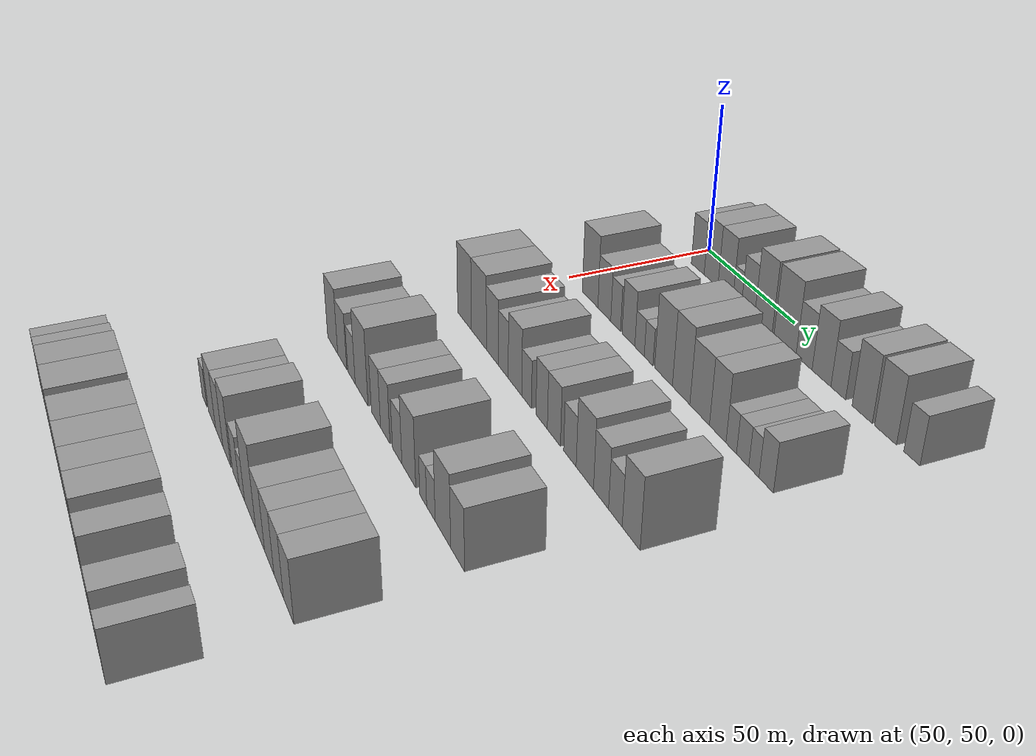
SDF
<sdf version="1.6">
 <world name="default">
  <model name="building_74">
   <static>1</static>
   <pose>50.0000 59.7397 0 0.000000 0.000000 0.000000</pose>
   <link name="link">
    <pose>0 0 9.00 0 0 0</pose>
    <collision name="collision"><geometry><box><size>20.0000 8.1716 18.0000</size></box></geometry></collision>
    <visual name="visual">
     <cast_shadows>0</cast_shadows>
     <geometry><box><size>20.0000 8.1716 18.0000</size></box></geometry>
     <material>
      <script>
       <uri>model://grey_wall/materials/scripts</uri>
       <uri>model://grey_wall/materials/textures</uri>
       <name>vrc/grey_wall</name>
      </script>
     </material>
    </visual>
   </link>
  </model>
  <model name="building_75">
   <static>1</static>
   <pose>50.0000 68.0638 0 0.000000 0.000000 0.000000</pose>
   <link name="link">
    <pose>0 0 10.50 0 0 0</pose>
    <collision name="collision"><geometry><box><size>20.0000 8.4766 21.0000</size></box></geometry></collision>
    <visual name="visual">
     <cast_shadows>0</cast_shadows>
     <geometry><box><size>20.0000 8.4766 21.0000</size></box></geometry>
     <material>
      <script>
       <uri>model://grey_wall/materials/scripts</uri>
       <uri>model://grey_wall/materials/textures</uri>
       <name>vrc/grey_wall</name>
      </script>
     </material>
    </visual>
   </link>
  </model>
  <model name="building_76">
   <static>1</static>
   <pose>50.0000 76.7756 0 0.000000 0.000000 0.000000</pose>
   <link name="link">
    <pose>0 0 10.50 0 0 0</pose>
    <collision name="collision"><geometry><box><size>20.0000 8.9470 21.0000</size></box></geometry></collision>
    <visual name="visual">
     <cast_shadows>0</cast_shadows>
     <geometry><box><size>20.0000 8.9470 21.0000</size></box></geometry>
     <material>
      <script>
       <uri>model://grey_wall/materials/scripts</uri>
       <uri>model://grey_wall/materials/textures</uri>
       <name>vrc/grey_wall</name>
      </script>
     </material>
    </visual>
   </link>
  </model>
  <model name="building_77">
   <static>1</static>
   <pose>50.0000 83.7111 0 0.000000 0.000000 0.000000</pose>
   <link name="link">
    <pose>0 0 6.00 0 0 0</pose>
    <collision name="collision"><geometry><box><size>20.0000 4.9240 12.0000</size></box></geometry></collision>
    <visual name="visual">
     <cast_shadows>0</cast_shadows>
     <geometry><box><size>20.0000 4.9240 12.0000</size></box></geometry>
     <material>
      <script>
       <uri>model://grey_wall/materials/scripts</uri>
       <uri>model://grey_wall/materials/textures</uri>
       <name>vrc/grey_wall</name>
      </script>
     </material>
    </visual>
   </link>
  </model>
  <model name="building_78">
   <static>1</static>
   <pose>50.0000 89.8989 0 0.000000 0.000000 0.000000</pose>
   <link name="link">
    <pose>0 0 9.00 0 0 0</pose>
    <collision name="collision"><geometry><box><size>20.0000 7.4517 18.0000</size></box></geometry></collision>
    <visual name="visual">
     <cast_shadows>0</cast_shadows>
     <geometry><box><size>20.0000 7.4517 18.0000</size></box></geometry>
     <material>
      <script>
       <uri>model://grey_wall/materials/scripts</uri>
       <uri>model://grey_wall/materials/textures</uri>
       <name>vrc/grey_wall</name>
      </script>
     </material>
    </visual>
   </link>
  </model>
  <model name="building_79">
   <static>1</static>
   <pose>50.0000 98.4519 0 0.000000 0.000000 0.000000</pose>
   <link name="link">
    <pose>0 0 12.00 0 0 0</pose>
    <collision name="collision"><geometry><box><size>20.0000 9.6544 24.0000</size></box></geometry></collision>
    <visual name="visual">
     <cast_shadows>0</cast_shadows>
     <geometry><box><size>20.0000 9.6544 24.0000</size></box></geometry>
     <material>
      <script>
       <uri>model://grey_wall/materials/scripts</uri>
       <uri>model://grey_wall/materials/textures</uri>
       <name>vrc/grey_wall</name>
      </script>
     </material>
    </visual>
   </link>
  </model>
  <model name="building_80">
   <static>1</static>
   <pose>50.0000 110.0770 0 0.000000 0.000000 0.000000</pose>
   <link name="link">
    <pose>0 0 12.00 0 0 0</pose>
    <collision name="collision"><geometry><box><size>20.0000 11.5958 24.0000</size></box></geometry></collision>
    <visual name="visual">
     <cast_shadows>0</cast_shadows>
     <geometry><box><size>20.0000 11.5958 24.0000</size></box></geometry>
     <material>
      <script>
       <uri>model://grey_wall/materials/scripts</uri>
       <uri>model://grey_wall/materials/textures</uri>
       <name>vrc/grey_wall</name>
      </script>
     </material>
    </visual>
   </link>
  </model>
  <model name="building_81">
   <static>1</static>
   <pose>50.0000 119.9259 0 0.000000 0.000000 0.000000</pose>
   <link name="link">
    <pose>0 0 9.00 0 0 0</pose>
    <collision name="collision"><geometry><box><size>20.0000 8.1019 18.0000</size></box></geometry></collision>
    <visual name="visual">
     <cast_shadows>0</cast_shadows>
     <geometry><box><size>20.0000 8.1019 18.0000</size></box></geometry>
     <material>
      <script>
       <uri>model://grey_wall/materials/scripts</uri>
       <uri>model://grey_wall/materials/textures</uri>
       <name>vrc/grey_wall</name>
      </script>
     </material>
    </visual>
   </link>
  </model>
  <model name="building_82">
   <static>1</static>
   <pose>50.0000 128.5362 0 0.000000 0.000000 0.000000</pose>
   <link name="link">
    <pose>0 0 10.50 0 0 0</pose>
    <collision name="collision"><geometry><box><size>20.0000 9.1188 21.0000</size></box></geometry></collision>
    <visual name="visual">
     <cast_shadows>0</cast_shadows>
     <geometry><box><size>20.0000 9.1188 21.0000</size></box></geometry>
     <material>
      <script>
       <uri>model://grey_wall/materials/scripts</uri>
       <uri>model://grey_wall/materials/textures</uri>
       <name>vrc/grey_wall</name>
      </script>
     </material>
    </visual>
   </link>
  </model>
  <model name="building_83">
   <static>1</static>
   <pose>50.0000 136.5406 0 0.000000 0.000000 0.000000</pose>
   <link name="link">
    <pose>0 0 7.50 0 0 0</pose>
    <collision name="collision"><geometry><box><size>20.0000 6.8900 15.0000</size></box></geometry></collision>
    <visual name="visual">
     <cast_shadows>0</cast_shadows>
     <geometry><box><size>20.0000 6.8900 15.0000</size></box></geometry>
     <material>
      <script>
       <uri>model://grey_wall/materials/scripts</uri>
       <uri>model://grey_wall/materials/textures</uri>
       <name>vrc/grey_wall</name>
      </script>
     </material>
    </visual>
   </link>
  </model>
  <model name="building_84">
   <static>1</static>
   <pose>50.0000 147.4978 0 0.000000 0.000000 0.000000</pose>
   <link name="link">
    <pose>0 0 10.50 0 0 0</pose>
    <collision name="collision"><geometry><box><size>20.0000 9.0243 21.0000</size></box></geometry></collision>
    <visual name="visual">
     <cast_shadows>0</cast_shadows>
     <geometry><box><size>20.0000 9.0243 21.0000</size></box></geometry>
     <material>
      <script>
       <uri>model://grey_wall/materials/scripts</uri>
       <uri>model://grey_wall/materials/textures</uri>
       <name>vrc/grey_wall</name>
      </script>
     </material>
    </visual>
   </link>
  </model>
  <model name="building_85">
   <static>1</static>
   <pose>50.0000 157.6955 0 0.000000 0.000000 0.000000</pose>
   <link name="link">
    <pose>0 0 10.50 0 0 0</pose>
    <collision name="collision"><geometry><box><size>20.0000 9.3711 21.0000</size></box></geometry></collision>
    <visual name="visual">
     <cast_shadows>0</cast_shadows>
     <geometry><box><size>20.0000 9.3711 21.0000</size></box></geometry>
     <material>
      <script>
       <uri>model://grey_wall/materials/scripts</uri>
       <uri>model://grey_wall/materials/textures</uri>
       <name>vrc/grey_wall</name>
      </script>
     </material>
    </visual>
   </link>
  </model>
  <model name="building_86">
   <static>1</static>
   <pose>50.0000 168.6823 0 0.000000 0.000000 0.000000</pose>
   <link name="link">
    <pose>0 0 7.50 0 0 0</pose>
    <collision name="collision"><geometry><box><size>20.0000 6.6025 15.0000</size></box></geometry></collision>
    <visual name="visual">
     <cast_shadows>0</cast_shadows>
     <geometry><box><size>20.0000 6.6025 15.0000</size></box></geometry>
     <material>
      <script>
       <uri>model://grey_wall/materials/scripts</uri>
       <uri>model://grey_wall/materials/textures</uri>
       <name>vrc/grey_wall</name>
      </script>
     </material>
    </visual>
   </link>
  </model>
  <model name="building_215">
   <static>1</static>
   <pose>90.0000 64.5155 0 0.000000 0.000000 0.000000</pose>
   <link name="link">
    <pose>0 0 12.00 0 0 0</pose>
    <collision name="collision"><geometry><box><size>20.0000 10.8328 24.0000</size></box></geometry></collision>
    <visual name="visual">
     <cast_shadows>0</cast_shadows>
     <geometry><box><size>20.0000 10.8328 24.0000</size></box></geometry>
     <material>
      <script>
       <uri>model://grey_wall/materials/scripts</uri>
       <uri>model://grey_wall/materials/textures</uri>
       <name>vrc/grey_wall</name>
      </script>
     </material>
    </visual>
   </link>
  </model>
  <model name="building_216">
   <static>1</static>
   <pose>90.0000 74.2738 0 0.000000 0.000000 0.000000</pose>
   <link name="link">
    <pose>0 0 9.00 0 0 0</pose>
    <collision name="collision"><geometry><box><size>20.0000 8.6839 18.0000</size></box></geometry></collision>
    <visual name="visual">
     <cast_shadows>0</cast_shadows>
     <geometry><box><size>20.0000 8.6839 18.0000</size></box></geometry>
     <material>
      <script>
       <uri>model://grey_wall/materials/scripts</uri>
       <uri>model://grey_wall/materials/textures</uri>
       <name>vrc/grey_wall</name>
      </script>
     </material>
    </visual>
   </link>
  </model>
  <model name="building_217">
   <static>1</static>
   <pose>90.0000 81.8164 0 0.000000 0.000000 0.000000</pose>
   <link name="link">
    <pose>0 0 7.50 0 0 0</pose>
    <collision name="collision"><geometry><box><size>20.0000 6.4012 15.0000</size></box></geometry></collision>
    <visual name="visual">
     <cast_shadows>0</cast_shadows>
     <geometry><box><size>20.0000 6.4012 15.0000</size></box></geometry>
     <material>
      <script>
       <uri>model://grey_wall/materials/scripts</uri>
       <uri>model://grey_wall/materials/textures</uri>
       <name>vrc/grey_wall</name>
      </script>
     </material>
    </visual>
   </link>
  </model>
  <model name="building_218">
   <static>1</static>
   <pose>90.0000 90.0729 0 0.000000 0.000000 0.000000</pose>
   <link name="link">
    <pose>0 0 9.00 0 0 0</pose>
    <collision name="collision"><geometry><box><size>20.0000 8.1118 18.0000</size></box></geometry></collision>
    <visual name="visual">
     <cast_shadows>0</cast_shadows>
     <geometry><box><size>20.0000 8.1118 18.0000</size></box></geometry>
     <material>
      <script>
       <uri>model://grey_wall/materials/scripts</uri>
       <uri>model://grey_wall/materials/textures</uri>
       <name>vrc/grey_wall</name>
      </script>
     </material>
    </visual>
   </link>
  </model>
  <model name="building_219">
   <static>1</static>
   <pose>90.0000 97.0209 0 0.000000 0.000000 0.000000</pose>
   <link name="link">
    <pose>0 0 6.00 0 0 0</pose>
    <collision name="collision"><geometry><box><size>20.0000 5.7843 12.0000</size></box></geometry></collision>
    <visual name="visual">
     <cast_shadows>0</cast_shadows>
     <geometry><box><size>20.0000 5.7843 12.0000</size></box></geometry>
     <material>
      <script>
       <uri>model://grey_wall/materials/scripts</uri>
       <uri>model://grey_wall/materials/textures</uri>
       <name>vrc/grey_wall</name>
      </script>
     </material>
    </visual>
   </link>
  </model>
  <model name="building_220">
   <static>1</static>
   <pose>90.0000 102.5352 0 0.000000 0.000000 0.000000</pose>
   <link name="link">
    <pose>0 0 6.00 0 0 0</pose>
    <collision name="collision"><geometry><box><size>20.0000 5.2442 12.0000</size></box></geometry></collision>
    <visual name="visual">
     <cast_shadows>0</cast_shadows>
     <geometry><box><size>20.0000 5.2442 12.0000</size></box></geometry>
     <material>
      <script>
       <uri>model://grey_wall/materials/scripts</uri>
       <uri>model://grey_wall/materials/textures</uri>
       <name>vrc/grey_wall</name>
      </script>
     </material>
    </visual>
   </link>
  </model>
  <model name="building_221">
   <static>1</static>
   <pose>90.0000 111.3199 0 0.000000 0.000000 0.000000</pose>
   <link name="link">
    <pose>0 0 12.00 0 0 0</pose>
    <collision name="collision"><geometry><box><size>20.0000 10.3253 24.0000</size></box></geometry></collision>
    <visual name="visual">
     <cast_shadows>0</cast_shadows>
     <geometry><box><size>20.0000 10.3253 24.0000</size></box></geometry>
     <material>
      <script>
       <uri>model://grey_wall/materials/scripts</uri>
       <uri>model://grey_wall/materials/textures</uri>
       <name>vrc/grey_wall</name>
      </script>
     </material>
    </visual>
   </link>
  </model>
  <model name="building_222">
   <static>1</static>
   <pose>90.0000 121.3473 0 0.000000 0.000000 0.000000</pose>
   <link name="link">
    <pose>0 0 12.00 0 0 0</pose>
    <collision name="collision"><geometry><box><size>20.0000 9.7294 24.0000</size></box></geometry></collision>
    <visual name="visual">
     <cast_shadows>0</cast_shadows>
     <geometry><box><size>20.0000 9.7294 24.0000</size></box></geometry>
     <material>
      <script>
       <uri>model://grey_wall/materials/scripts</uri>
       <uri>model://grey_wall/materials/textures</uri>
       <name>vrc/grey_wall</name>
      </script>
     </material>
    </visual>
   </link>
  </model>
  <model name="building_223">
   <static>1</static>
   <pose>90.0000 131.4153 0 0.000000 0.000000 0.000000</pose>
   <link name="link">
    <pose>0 0 10.50 0 0 0</pose>
    <collision name="collision"><geometry><box><size>20.0000 10.4067 21.0000</size></box></geometry></collision>
    <visual name="visual">
     <cast_shadows>0</cast_shadows>
     <geometry><box><size>20.0000 10.4067 21.0000</size></box></geometry>
     <material>
      <script>
       <uri>model://grey_wall/materials/scripts</uri>
       <uri>model://grey_wall/materials/textures</uri>
       <name>vrc/grey_wall</name>
      </script>
     </material>
    </visual>
   </link>
  </model>
  <model name="building_224">
   <static>1</static>
   <pose>90.0000 140.8408 0 0.000000 0.000000 0.000000</pose>
   <link name="link">
    <pose>0 0 10.50 0 0 0</pose>
    <collision name="collision"><geometry><box><size>20.0000 8.4443 21.0000</size></box></geometry></collision>
    <visual name="visual">
     <cast_shadows>0</cast_shadows>
     <geometry><box><size>20.0000 8.4443 21.0000</size></box></geometry>
     <material>
      <script>
       <uri>model://grey_wall/materials/scripts</uri>
       <uri>model://grey_wall/materials/textures</uri>
       <name>vrc/grey_wall</name>
      </script>
     </material>
    </visual>
   </link>
  </model>
  <model name="building_225">
   <static>1</static>
   <pose>90.0000 147.6530 0 0.000000 0.000000 0.000000</pose>
   <link name="link">
    <pose>0 0 6.00 0 0 0</pose>
    <collision name="collision"><geometry><box><size>20.0000 5.1801 12.0000</size></box></geometry></collision>
    <visual name="visual">
     <cast_shadows>0</cast_shadows>
     <geometry><box><size>20.0000 5.1801 12.0000</size></box></geometry>
     <material>
      <script>
       <uri>model://grey_wall/materials/scripts</uri>
       <uri>model://grey_wall/materials/textures</uri>
       <name>vrc/grey_wall</name>
      </script>
     </material>
    </visual>
   </link>
  </model>
  <model name="building_226">
   <static>1</static>
   <pose>90.0000 153.1986 0 0.000000 0.000000 0.000000</pose>
   <link name="link">
    <pose>0 0 6.00 0 0 0</pose>
    <collision name="collision"><geometry><box><size>20.0000 5.9110 12.0000</size></box></geometry></collision>
    <visual name="visual">
     <cast_shadows>0</cast_shadows>
     <geometry><box><size>20.0000 5.9110 12.0000</size></box></geometry>
     <material>
      <script>
       <uri>model://grey_wall/materials/scripts</uri>
       <uri>model://grey_wall/materials/textures</uri>
       <name>vrc/grey_wall</name>
      </script>
     </material>
    </visual>
   </link>
  </model>
  <model name="building_227">
   <static>1</static>
   <pose>90.0000 158.5585 0 0.000000 0.000000 0.000000</pose>
   <link name="link">
    <pose>0 0 6.00 0 0 0</pose>
    <collision name="collision"><geometry><box><size>20.0000 4.8089 12.0000</size></box></geometry></collision>
    <visual name="visual">
     <cast_shadows>0</cast_shadows>
     <geometry><box><size>20.0000 4.8089 12.0000</size></box></geometry>
     <material>
      <script>
       <uri>model://grey_wall/materials/scripts</uri>
       <uri>model://grey_wall/materials/textures</uri>
       <name>vrc/grey_wall</name>
      </script>
     </material>
    </visual>
   </link>
  </model>
  <model name="building_228">
   <static>1</static>
   <pose>90.0000 164.2786 0 0.000000 0.000000 0.000000</pose>
   <link name="link">
    <pose>0 0 7.50 0 0 0</pose>
    <collision name="collision"><geometry><box><size>20.0000 6.6313 15.0000</size></box></geometry></collision>
    <visual name="visual">
     <cast_shadows>0</cast_shadows>
     <geometry><box><size>20.0000 6.6313 15.0000</size></box></geometry>
     <material>
      <script>
       <uri>model://grey_wall/materials/scripts</uri>
       <uri>model://grey_wall/materials/textures</uri>
       <name>vrc/grey_wall</name>
      </script>
     </material>
    </visual>
   </link>
  </model>
  <model name="building_352">
   <static>1</static>
   <pose>130.0000 62.1734 0 0.000000 0.000000 0.000000</pose>
   <link name="link">
    <pose>0 0 12.00 0 0 0</pose>
    <collision name="collision"><geometry><box><size>20.0000 11.2594 24.0000</size></box></geometry></collision>
    <visual name="visual">
     <cast_shadows>0</cast_shadows>
     <geometry><box><size>20.0000 11.2594 24.0000</size></box></geometry>
     <material>
      <script>
       <uri>model://grey_wall/materials/scripts</uri>
       <uri>model://grey_wall/materials/textures</uri>
       <name>vrc/grey_wall</name>
      </script>
     </material>
    </visual>
   </link>
  </model>
  <model name="building_353">
   <static>1</static>
   <pose>130.0000 73.6812 0 0.000000 0.000000 0.000000</pose>
   <link name="link">
    <pose>0 0 12.00 0 0 0</pose>
    <collision name="collision"><geometry><box><size>20.0000 11.7561 24.0000</size></box></geometry></collision>
    <visual name="visual">
     <cast_shadows>0</cast_shadows>
     <geometry><box><size>20.0000 11.7561 24.0000</size></box></geometry>
     <material>
      <script>
       <uri>model://grey_wall/materials/scripts</uri>
       <uri>model://grey_wall/materials/textures</uri>
       <name>vrc/grey_wall</name>
      </script>
     </material>
    </visual>
   </link>
  </model>
  <model name="building_354">
   <static>1</static>
   <pose>130.0000 84.0044 0 0.000000 0.000000 0.000000</pose>
   <link name="link">
    <pose>0 0 10.50 0 0 0</pose>
    <collision name="collision"><geometry><box><size>20.0000 8.8904 21.0000</size></box></geometry></collision>
    <visual name="visual">
     <cast_shadows>0</cast_shadows>
     <geometry><box><size>20.0000 8.8904 21.0000</size></box></geometry>
     <material>
      <script>
       <uri>model://grey_wall/materials/scripts</uri>
       <uri>model://grey_wall/materials/textures</uri>
       <name>vrc/grey_wall</name>
      </script>
     </material>
    </visual>
   </link>
  </model>
  <model name="building_355">
   <static>1</static>
   <pose>130.0000 92.0785 0 0.000000 0.000000 0.000000</pose>
   <link name="link">
    <pose>0 0 9.00 0 0 0</pose>
    <collision name="collision"><geometry><box><size>20.0000 7.2577 18.0000</size></box></geometry></collision>
    <visual name="visual">
     <cast_shadows>0</cast_shadows>
     <geometry><box><size>20.0000 7.2577 18.0000</size></box></geometry>
     <material>
      <script>
       <uri>model://grey_wall/materials/scripts</uri>
       <uri>model://grey_wall/materials/textures</uri>
       <name>vrc/grey_wall</name>
      </script>
     </material>
    </visual>
   </link>
  </model>
  <model name="building_356">
   <static>1</static>
   <pose>130.0000 100.4611 0 0.000000 0.000000 0.000000</pose>
   <link name="link">
    <pose>0 0 10.50 0 0 0</pose>
    <collision name="collision"><geometry><box><size>20.0000 9.5075 21.0000</size></box></geometry></collision>
    <visual name="visual">
     <cast_shadows>0</cast_shadows>
     <geometry><box><size>20.0000 9.5075 21.0000</size></box></geometry>
     <material>
      <script>
       <uri>model://grey_wall/materials/scripts</uri>
       <uri>model://grey_wall/materials/textures</uri>
       <name>vrc/grey_wall</name>
      </script>
     </material>
    </visual>
   </link>
  </model>
  <model name="building_357">
   <static>1</static>
   <pose>130.0000 108.5119 0 0.000000 0.000000 0.000000</pose>
   <link name="link">
    <pose>0 0 7.50 0 0 0</pose>
    <collision name="collision"><geometry><box><size>20.0000 6.5941 15.0000</size></box></geometry></collision>
    <visual name="visual">
     <cast_shadows>0</cast_shadows>
     <geometry><box><size>20.0000 6.5941 15.0000</size></box></geometry>
     <material>
      <script>
       <uri>model://grey_wall/materials/scripts</uri>
       <uri>model://grey_wall/materials/textures</uri>
       <name>vrc/grey_wall</name>
      </script>
     </material>
    </visual>
   </link>
  </model>
  <model name="building_358">
   <static>1</static>
   <pose>130.0000 118.4953 0 0.000000 0.000000 0.000000</pose>
   <link name="link">
    <pose>0 0 9.00 0 0 0</pose>
    <collision name="collision"><geometry><box><size>20.0000 7.3727 18.0000</size></box></geometry></collision>
    <visual name="visual">
     <cast_shadows>0</cast_shadows>
     <geometry><box><size>20.0000 7.3727 18.0000</size></box></geometry>
     <material>
      <script>
       <uri>model://grey_wall/materials/scripts</uri>
       <uri>model://grey_wall/materials/textures</uri>
       <name>vrc/grey_wall</name>
      </script>
     </material>
    </visual>
   </link>
  </model>
  <model name="building_359">
   <static>1</static>
   <pose>130.0000 126.2773 0 0.000000 0.000000 0.000000</pose>
   <link name="link">
    <pose>0 0 9.00 0 0 0</pose>
    <collision name="collision"><geometry><box><size>20.0000 8.1915 18.0000</size></box></geometry></collision>
    <visual name="visual">
     <cast_shadows>0</cast_shadows>
     <geometry><box><size>20.0000 8.1915 18.0000</size></box></geometry>
     <material>
      <script>
       <uri>model://grey_wall/materials/scripts</uri>
       <uri>model://grey_wall/materials/textures</uri>
       <name>vrc/grey_wall</name>
      </script>
     </material>
    </visual>
   </link>
  </model>
  <model name="building_360">
   <static>1</static>
   <pose>130.0000 136.1133 0 0.000000 0.000000 0.000000</pose>
   <link name="link">
    <pose>0 0 7.50 0 0 0</pose>
    <collision name="collision"><geometry><box><size>20.0000 7.4804 15.0000</size></box></geometry></collision>
    <visual name="visual">
     <cast_shadows>0</cast_shadows>
     <geometry><box><size>20.0000 7.4804 15.0000</size></box></geometry>
     <material>
      <script>
       <uri>model://grey_wall/materials/scripts</uri>
       <uri>model://grey_wall/materials/textures</uri>
       <name>vrc/grey_wall</name>
      </script>
     </material>
    </visual>
   </link>
  </model>
  <model name="building_361">
   <static>1</static>
   <pose>130.0000 144.8466 0 0.000000 0.000000 0.000000</pose>
   <link name="link">
    <pose>0 0 10.50 0 0 0</pose>
    <collision name="collision"><geometry><box><size>20.0000 9.9862 21.0000</size></box></geometry></collision>
    <visual name="visual">
     <cast_shadows>0</cast_shadows>
     <geometry><box><size>20.0000 9.9862 21.0000</size></box></geometry>
     <material>
      <script>
       <uri>model://grey_wall/materials/scripts</uri>
       <uri>model://grey_wall/materials/textures</uri>
       <name>vrc/grey_wall</name>
      </script>
     </material>
    </visual>
   </link>
  </model>
  <model name="building_362">
   <static>1</static>
   <pose>130.0000 153.9730 0 0.000000 0.000000 0.000000</pose>
   <link name="link">
    <pose>0 0 9.00 0 0 0</pose>
    <collision name="collision"><geometry><box><size>20.0000 8.2668 18.0000</size></box></geometry></collision>
    <visual name="visual">
     <cast_shadows>0</cast_shadows>
     <geometry><box><size>20.0000 8.2668 18.0000</size></box></geometry>
     <material>
      <script>
       <uri>model://grey_wall/materials/scripts</uri>
       <uri>model://grey_wall/materials/textures</uri>
       <name>vrc/grey_wall</name>
      </script>
     </material>
    </visual>
   </link>
  </model>
  <model name="building_363">
   <static>1</static>
   <pose>130.0000 161.7155 0 0.000000 0.000000 0.000000</pose>
   <link name="link">
    <pose>0 0 7.50 0 0 0</pose>
    <collision name="collision"><geometry><box><size>20.0000 7.2181 15.0000</size></box></geometry></collision>
    <visual name="visual">
     <cast_shadows>0</cast_shadows>
     <geometry><box><size>20.0000 7.2181 15.0000</size></box></geometry>
     <material>
      <script>
       <uri>model://grey_wall/materials/scripts</uri>
       <uri>model://grey_wall/materials/textures</uri>
       <name>vrc/grey_wall</name>
      </script>
     </material>
    </visual>
   </link>
  </model>
  <model name="building_364">
   <static>1</static>
   <pose>130.0000 169.8887 0 0.000000 0.000000 0.000000</pose>
   <link name="link">
    <pose>0 0 10.50 0 0 0</pose>
    <collision name="collision"><geometry><box><size>20.0000 9.1284 21.0000</size></box></geometry></collision>
    <visual name="visual">
     <cast_shadows>0</cast_shadows>
     <geometry><box><size>20.0000 9.1284 21.0000</size></box></geometry>
     <material>
      <script>
       <uri>model://grey_wall/materials/scripts</uri>
       <uri>model://grey_wall/materials/textures</uri>
       <name>vrc/grey_wall</name>
      </script>
     </material>
    </visual>
   </link>
  </model>
  <model name="building_491">
   <static>1</static>
   <pose>170.0000 60.7049 0 0.000000 0.000000 0.000000</pose>
   <link name="link">
    <pose>0 0 10.50 0 0 0</pose>
    <collision name="collision"><geometry><box><size>20.0000 10.1401 21.0000</size></box></geometry></collision>
    <visual name="visual">
     <cast_shadows>0</cast_shadows>
     <geometry><box><size>20.0000 10.1401 21.0000</size></box></geometry>
     <material>
      <script>
       <uri>model://grey_wall/materials/scripts</uri>
       <uri>model://grey_wall/materials/textures</uri>
       <name>vrc/grey_wall</name>
      </script>
     </material>
    </visual>
   </link>
  </model>
  <model name="building_492">
   <static>1</static>
   <pose>170.0000 70.2241 0 0.000000 0.000000 0.000000</pose>
   <link name="link">
    <pose>0 0 9.00 0 0 0</pose>
    <collision name="collision"><geometry><box><size>20.0000 8.8984 18.0000</size></box></geometry></collision>
    <visual name="visual">
     <cast_shadows>0</cast_shadows>
     <geometry><box><size>20.0000 8.8984 18.0000</size></box></geometry>
     <material>
      <script>
       <uri>model://grey_wall/materials/scripts</uri>
       <uri>model://grey_wall/materials/textures</uri>
       <name>vrc/grey_wall</name>
      </script>
     </material>
    </visual>
   </link>
  </model>
  <model name="building_493">
   <static>1</static>
   <pose>170.0000 79.1418 0 0.000000 0.000000 0.000000</pose>
   <link name="link">
    <pose>0 0 7.50 0 0 0</pose>
    <collision name="collision"><geometry><box><size>20.0000 6.9371 15.0000</size></box></geometry></collision>
    <visual name="visual">
     <cast_shadows>0</cast_shadows>
     <geometry><box><size>20.0000 6.9371 15.0000</size></box></geometry>
     <material>
      <script>
       <uri>model://grey_wall/materials/scripts</uri>
       <uri>model://grey_wall/materials/textures</uri>
       <name>vrc/grey_wall</name>
      </script>
     </material>
    </visual>
   </link>
  </model>
  <model name="building_494">
   <static>1</static>
   <pose>170.0000 88.4236 0 0.000000 0.000000 0.000000</pose>
   <link name="link">
    <pose>0 0 12.00 0 0 0</pose>
    <collision name="collision"><geometry><box><size>20.0000 11.6265 24.0000</size></box></geometry></collision>
    <visual name="visual">
     <cast_shadows>0</cast_shadows>
     <geometry><box><size>20.0000 11.6265 24.0000</size></box></geometry>
     <material>
      <script>
       <uri>model://grey_wall/materials/scripts</uri>
       <uri>model://grey_wall/materials/textures</uri>
       <name>vrc/grey_wall</name>
      </script>
     </material>
    </visual>
   </link>
  </model>
  <model name="building_495">
   <static>1</static>
   <pose>170.0000 101.1318 0 0.000000 0.000000 0.000000</pose>
   <link name="link">
    <pose>0 0 9.00 0 0 0</pose>
    <collision name="collision"><geometry><box><size>20.0000 7.7897 18.0000</size></box></geometry></collision>
    <visual name="visual">
     <cast_shadows>0</cast_shadows>
     <geometry><box><size>20.0000 7.7897 18.0000</size></box></geometry>
     <material>
      <script>
       <uri>model://grey_wall/materials/scripts</uri>
       <uri>model://grey_wall/materials/textures</uri>
       <name>vrc/grey_wall</name>
      </script>
     </material>
    </visual>
   </link>
  </model>
  <model name="building_496">
   <static>1</static>
   <pose>170.0000 108.9377 0 0.000000 0.000000 0.000000</pose>
   <link name="link">
    <pose>0 0 9.00 0 0 0</pose>
    <collision name="collision"><geometry><box><size>20.0000 7.8221 18.0000</size></box></geometry></collision>
    <visual name="visual">
     <cast_shadows>0</cast_shadows>
     <geometry><box><size>20.0000 7.8221 18.0000</size></box></geometry>
     <material>
      <script>
       <uri>model://grey_wall/materials/scripts</uri>
       <uri>model://grey_wall/materials/textures</uri>
       <name>vrc/grey_wall</name>
      </script>
     </material>
    </visual>
   </link>
  </model>
  <model name="building_497">
   <static>1</static>
   <pose>170.0000 118.5829 0 0.000000 0.000000 0.000000</pose>
   <link name="link">
    <pose>0 0 7.50 0 0 0</pose>
    <collision name="collision"><geometry><box><size>20.0000 7.4683 15.0000</size></box></geometry></collision>
    <visual name="visual">
     <cast_shadows>0</cast_shadows>
     <geometry><box><size>20.0000 7.4683 15.0000</size></box></geometry>
     <material>
      <script>
       <uri>model://grey_wall/materials/scripts</uri>
       <uri>model://grey_wall/materials/textures</uri>
       <name>vrc/grey_wall</name>
      </script>
     </material>
    </visual>
   </link>
  </model>
  <model name="building_498">
   <static>1</static>
   <pose>170.0000 127.5397 0 0.000000 0.000000 0.000000</pose>
   <link name="link">
    <pose>0 0 10.50 0 0 0</pose>
    <collision name="collision"><geometry><box><size>20.0000 10.4454 21.0000</size></box></geometry></collision>
    <visual name="visual">
     <cast_shadows>0</cast_shadows>
     <geometry><box><size>20.0000 10.4454 21.0000</size></box></geometry>
     <material>
      <script>
       <uri>model://grey_wall/materials/scripts</uri>
       <uri>model://grey_wall/materials/textures</uri>
       <name>vrc/grey_wall</name>
      </script>
     </material>
    </visual>
   </link>
  </model>
  <model name="building_499">
   <static>1</static>
   <pose>170.0000 138.2293 0 0.000000 0.000000 0.000000</pose>
   <link name="link">
    <pose>0 0 6.00 0 0 0</pose>
    <collision name="collision"><geometry><box><size>20.0000 4.9337 12.0000</size></box></geometry></collision>
    <visual name="visual">
     <cast_shadows>0</cast_shadows>
     <geometry><box><size>20.0000 4.9337 12.0000</size></box></geometry>
     <material>
      <script>
       <uri>model://grey_wall/materials/scripts</uri>
       <uri>model://grey_wall/materials/textures</uri>
       <name>vrc/grey_wall</name>
      </script>
     </material>
    </visual>
   </link>
  </model>
  <model name="building_500">
   <static>1</static>
   <pose>170.0000 143.6914 0 0.000000 0.000000 0.000000</pose>
   <link name="link">
    <pose>0 0 6.00 0 0 0</pose>
    <collision name="collision"><geometry><box><size>20.0000 5.9903 12.0000</size></box></geometry></collision>
    <visual name="visual">
     <cast_shadows>0</cast_shadows>
     <geometry><box><size>20.0000 5.9903 12.0000</size></box></geometry>
     <material>
      <script>
       <uri>model://grey_wall/materials/scripts</uri>
       <uri>model://grey_wall/materials/textures</uri>
       <name>vrc/grey_wall</name>
      </script>
     </material>
    </visual>
   </link>
  </model>
  <model name="building_501">
   <static>1</static>
   <pose>170.0000 151.9131 0 0.000000 0.000000 0.000000</pose>
   <link name="link">
    <pose>0 0 10.50 0 0 0</pose>
    <collision name="collision"><geometry><box><size>20.0000 10.4530 21.0000</size></box></geometry></collision>
    <visual name="visual">
     <cast_shadows>0</cast_shadows>
     <geometry><box><size>20.0000 10.4530 21.0000</size></box></geometry>
     <material>
      <script>
       <uri>model://grey_wall/materials/scripts</uri>
       <uri>model://grey_wall/materials/textures</uri>
       <name>vrc/grey_wall</name>
      </script>
     </material>
    </visual>
   </link>
  </model>
  <model name="building_502">
   <static>1</static>
   <pose>170.0000 161.5912 0 0.000000 0.000000 0.000000</pose>
   <link name="link">
    <pose>0 0 9.00 0 0 0</pose>
    <collision name="collision"><geometry><box><size>20.0000 8.9033 18.0000</size></box></geometry></collision>
    <visual name="visual">
     <cast_shadows>0</cast_shadows>
     <geometry><box><size>20.0000 8.9033 18.0000</size></box></geometry>
     <material>
      <script>
       <uri>model://grey_wall/materials/scripts</uri>
       <uri>model://grey_wall/materials/textures</uri>
       <name>vrc/grey_wall</name>
      </script>
     </material>
    </visual>
   </link>
  </model>
  <model name="building_618">
   <static>1</static>
   <pose>210.0000 75.4510 0 0.000000 0.000000 0.000000</pose>
   <link name="link">
    <pose>0 0 6.00 0 0 0</pose>
    <collision name="collision"><geometry><box><size>20.0000 5.9827 12.0000</size></box></geometry></collision>
    <visual name="visual">
     <cast_shadows>0</cast_shadows>
     <geometry><box><size>20.0000 5.9827 12.0000</size></box></geometry>
     <material>
      <script>
       <uri>model://grey_wall/materials/scripts</uri>
       <uri>model://grey_wall/materials/textures</uri>
       <name>vrc/grey_wall</name>
      </script>
     </material>
    </visual>
   </link>
  </model>
  <model name="building_619">
   <static>1</static>
   <pose>210.0000 84.8587 0 0.000000 0.000000 0.000000</pose>
   <link name="link">
    <pose>0 0 9.00 0 0 0</pose>
    <collision name="collision"><geometry><box><size>20.0000 8.8329 18.0000</size></box></geometry></collision>
    <visual name="visual">
     <cast_shadows>0</cast_shadows>
     <geometry><box><size>20.0000 8.8329 18.0000</size></box></geometry>
     <material>
      <script>
       <uri>model://grey_wall/materials/scripts</uri>
       <uri>model://grey_wall/materials/textures</uri>
       <name>vrc/grey_wall</name>
      </script>
     </material>
    </visual>
   </link>
  </model>
  <model name="building_620">
   <static>1</static>
   <pose>210.0000 93.7442 0 0.000000 0.000000 0.000000</pose>
   <link name="link">
    <pose>0 0 9.00 0 0 0</pose>
    <collision name="collision"><geometry><box><size>20.0000 8.9382 18.0000</size></box></geometry></collision>
    <visual name="visual">
     <cast_shadows>0</cast_shadows>
     <geometry><box><size>20.0000 8.9382 18.0000</size></box></geometry>
     <material>
      <script>
       <uri>model://grey_wall/materials/scripts</uri>
       <uri>model://grey_wall/materials/textures</uri>
       <name>vrc/grey_wall</name>
      </script>
     </material>
    </visual>
   </link>
  </model>
  <model name="building_621">
   <static>1</static>
   <pose>210.0000 102.6963 0 0.000000 0.000000 0.000000</pose>
   <link name="link">
    <pose>0 0 10.50 0 0 0</pose>
    <collision name="collision"><geometry><box><size>20.0000 8.9660 21.0000</size></box></geometry></collision>
    <visual name="visual">
     <cast_shadows>0</cast_shadows>
     <geometry><box><size>20.0000 8.9660 21.0000</size></box></geometry>
     <material>
      <script>
       <uri>model://grey_wall/materials/scripts</uri>
       <uri>model://grey_wall/materials/textures</uri>
       <name>vrc/grey_wall</name>
      </script>
     </material>
    </visual>
   </link>
  </model>
  <model name="building_622">
   <static>1</static>
   <pose>210.0000 112.8214 0 0.000000 0.000000 0.000000</pose>
   <link name="link">
    <pose>0 0 7.50 0 0 0</pose>
    <collision name="collision"><geometry><box><size>20.0000 7.2841 15.0000</size></box></geometry></collision>
    <visual name="visual">
     <cast_shadows>0</cast_shadows>
     <geometry><box><size>20.0000 7.2841 15.0000</size></box></geometry>
     <material>
      <script>
       <uri>model://grey_wall/materials/scripts</uri>
       <uri>model://grey_wall/materials/textures</uri>
       <name>vrc/grey_wall</name>
      </script>
     </material>
    </visual>
   </link>
  </model>
  <model name="building_623">
   <static>1</static>
   <pose>210.0000 119.2446 0 0.000000 0.000000 0.000000</pose>
   <link name="link">
    <pose>0 0 6.00 0 0 0</pose>
    <collision name="collision"><geometry><box><size>20.0000 5.5623 12.0000</size></box></geometry></collision>
    <visual name="visual">
     <cast_shadows>0</cast_shadows>
     <geometry><box><size>20.0000 5.5623 12.0000</size></box></geometry>
     <material>
      <script>
       <uri>model://grey_wall/materials/scripts</uri>
       <uri>model://grey_wall/materials/textures</uri>
       <name>vrc/grey_wall</name>
      </script>
     </material>
    </visual>
   </link>
  </model>
  <model name="building_624">
   <static>1</static>
   <pose>210.0000 127.6757 0 0.000000 0.000000 0.000000</pose>
   <link name="link">
    <pose>0 0 12.00 0 0 0</pose>
    <collision name="collision"><geometry><box><size>20.0000 11.2999 24.0000</size></box></geometry></collision>
    <visual name="visual">
     <cast_shadows>0</cast_shadows>
     <geometry><box><size>20.0000 11.2999 24.0000</size></box></geometry>
     <material>
      <script>
       <uri>model://grey_wall/materials/scripts</uri>
       <uri>model://grey_wall/materials/textures</uri>
       <name>vrc/grey_wall</name>
      </script>
     </material>
    </visual>
   </link>
  </model>
  <model name="building_625">
   <static>1</static>
   <pose>210.0000 137.7132 0 0.000000 0.000000 0.000000</pose>
   <link name="link">
    <pose>0 0 9.00 0 0 0</pose>
    <collision name="collision"><geometry><box><size>20.0000 8.7752 18.0000</size></box></geometry></collision>
    <visual name="visual">
     <cast_shadows>0</cast_shadows>
     <geometry><box><size>20.0000 8.7752 18.0000</size></box></geometry>
     <material>
      <script>
       <uri>model://grey_wall/materials/scripts</uri>
       <uri>model://grey_wall/materials/textures</uri>
       <name>vrc/grey_wall</name>
      </script>
     </material>
    </visual>
   </link>
  </model>
  <model name="building_626">
   <static>1</static>
   <pose>210.0000 146.4480 0 0.000000 0.000000 0.000000</pose>
   <link name="link">
    <pose>0 0 9.00 0 0 0</pose>
    <collision name="collision"><geometry><box><size>20.0000 8.6944 18.0000</size></box></geometry></collision>
    <visual name="visual">
     <cast_shadows>0</cast_shadows>
     <geometry><box><size>20.0000 8.6944 18.0000</size></box></geometry>
     <material>
      <script>
       <uri>model://grey_wall/materials/scripts</uri>
       <uri>model://grey_wall/materials/textures</uri>
       <name>vrc/grey_wall</name>
      </script>
     </material>
    </visual>
   </link>
  </model>
  <model name="building_627">
   <static>1</static>
   <pose>210.0000 154.9999 0 0.000000 0.000000 0.000000</pose>
   <link name="link">
    <pose>0 0 9.00 0 0 0</pose>
    <collision name="collision"><geometry><box><size>20.0000 8.4093 18.0000</size></box></geometry></collision>
    <visual name="visual">
     <cast_shadows>0</cast_shadows>
     <geometry><box><size>20.0000 8.4093 18.0000</size></box></geometry>
     <material>
      <script>
       <uri>model://grey_wall/materials/scripts</uri>
       <uri>model://grey_wall/materials/textures</uri>
       <name>vrc/grey_wall</name>
      </script>
     </material>
    </visual>
   </link>
  </model>
  <model name="building_628">
   <static>1</static>
   <pose>210.0000 163.6226 0 0.000000 0.000000 0.000000</pose>
   <link name="link">
    <pose>0 0 9.00 0 0 0</pose>
    <collision name="collision"><geometry><box><size>20.0000 8.8362 18.0000</size></box></geometry></collision>
    <visual name="visual">
     <cast_shadows>0</cast_shadows>
     <geometry><box><size>20.0000 8.8362 18.0000</size></box></geometry>
     <material>
      <script>
       <uri>model://grey_wall/materials/scripts</uri>
       <uri>model://grey_wall/materials/textures</uri>
       <name>vrc/grey_wall</name>
      </script>
     </material>
    </visual>
   </link>
  </model>
  <model name="building_758">
   <static>1</static>
   <pose>250.0000 55.0631 0 0.000000 0.000000 0.000000</pose>
   <link name="link">
    <pose>0 0 9.00 0 0 0</pose>
    <collision name="collision"><geometry><box><size>20.0000 8.8966 18.0000</size></box></geometry></collision>
    <visual name="visual">
     <cast_shadows>0</cast_shadows>
     <geometry><box><size>20.0000 8.8966 18.0000</size></box></geometry>
     <material>
      <script>
       <uri>model://grey_wall/materials/scripts</uri>
       <uri>model://grey_wall/materials/textures</uri>
       <name>vrc/grey_wall</name>
      </script>
     </material>
    </visual>
   </link>
  </model>
  <model name="building_759">
   <static>1</static>
   <pose>250.0000 65.3660 0 0.000000 0.000000 0.000000</pose>
   <link name="link">
    <pose>0 0 10.50 0 0 0</pose>
    <collision name="collision"><geometry><box><size>20.0000 9.7093 21.0000</size></box></geometry></collision>
    <visual name="visual">
     <cast_shadows>0</cast_shadows>
     <geometry><box><size>20.0000 9.7093 21.0000</size></box></geometry>
     <material>
      <script>
       <uri>model://grey_wall/materials/scripts</uri>
       <uri>model://grey_wall/materials/textures</uri>
       <name>vrc/grey_wall</name>
      </script>
     </material>
    </visual>
   </link>
  </model>
  <model name="building_760">
   <static>1</static>
   <pose>250.0000 75.2357 0 0.000000 0.000000 0.000000</pose>
   <link name="link">
    <pose>0 0 12.00 0 0 0</pose>
    <collision name="collision"><geometry><box><size>20.0000 10.0300 24.0000</size></box></geometry></collision>
    <visual name="visual">
     <cast_shadows>0</cast_shadows>
     <geometry><box><size>20.0000 10.0300 24.0000</size></box></geometry>
     <material>
      <script>
       <uri>model://grey_wall/materials/scripts</uri>
       <uri>model://grey_wall/materials/textures</uri>
       <name>vrc/grey_wall</name>
      </script>
     </material>
    </visual>
   </link>
  </model>
  <model name="building_761">
   <static>1</static>
   <pose>250.0000 86.2477 0 0.000000 0.000000 0.000000</pose>
   <link name="link">
    <pose>0 0 12.00 0 0 0</pose>
    <collision name="collision"><geometry><box><size>20.0000 11.9941 24.0000</size></box></geometry></collision>
    <visual name="visual">
     <cast_shadows>0</cast_shadows>
     <geometry><box><size>20.0000 11.9941 24.0000</size></box></geometry>
     <material>
      <script>
       <uri>model://grey_wall/materials/scripts</uri>
       <uri>model://grey_wall/materials/textures</uri>
       <name>vrc/grey_wall</name>
      </script>
     </material>
    </visual>
   </link>
  </model>
  <model name="building_762">
   <static>1</static>
   <pose>250.0000 100.9161 0 0.000000 0.000000 0.000000</pose>
   <link name="link">
    <pose>0 0 12.00 0 0 0</pose>
    <collision name="collision"><geometry><box><size>20.0000 11.3426 24.0000</size></box></geometry></collision>
    <visual name="visual">
     <cast_shadows>0</cast_shadows>
     <geometry><box><size>20.0000 11.3426 24.0000</size></box></geometry>
     <material>
      <script>
       <uri>model://grey_wall/materials/scripts</uri>
       <uri>model://grey_wall/materials/textures</uri>
       <name>vrc/grey_wall</name>
      </script>
     </material>
    </visual>
   </link>
  </model>
  <model name="building_763">
   <static>1</static>
   <pose>250.0000 112.1472 0 0.000000 0.000000 0.000000</pose>
   <link name="link">
    <pose>0 0 12.00 0 0 0</pose>
    <collision name="collision"><geometry><box><size>20.0000 11.1197 24.0000</size></box></geometry></collision>
    <visual name="visual">
     <cast_shadows>0</cast_shadows>
     <geometry><box><size>20.0000 11.1197 24.0000</size></box></geometry>
     <material>
      <script>
       <uri>model://grey_wall/materials/scripts</uri>
       <uri>model://grey_wall/materials/textures</uri>
       <name>vrc/grey_wall</name>
      </script>
     </material>
    </visual>
   </link>
  </model>
  <model name="building_764">
   <static>1</static>
   <pose>250.0000 122.5744 0 0.000000 0.000000 0.000000</pose>
   <link name="link">
    <pose>0 0 12.00 0 0 0</pose>
    <collision name="collision"><geometry><box><size>20.0000 9.7346 24.0000</size></box></geometry></collision>
    <visual name="visual">
     <cast_shadows>0</cast_shadows>
     <geometry><box><size>20.0000 9.7346 24.0000</size></box></geometry>
     <material>
      <script>
       <uri>model://grey_wall/materials/scripts</uri>
       <uri>model://grey_wall/materials/textures</uri>
       <name>vrc/grey_wall</name>
      </script>
     </material>
    </visual>
   </link>
  </model>
  <model name="building_765">
   <static>1</static>
   <pose>250.0000 132.7889 0 0.000000 0.000000 0.000000</pose>
   <link name="link">
    <pose>0 0 12.00 0 0 0</pose>
    <collision name="collision"><geometry><box><size>20.0000 10.6945 24.0000</size></box></geometry></collision>
    <visual name="visual">
     <cast_shadows>0</cast_shadows>
     <geometry><box><size>20.0000 10.6945 24.0000</size></box></geometry>
     <material>
      <script>
       <uri>model://grey_wall/materials/scripts</uri>
       <uri>model://grey_wall/materials/textures</uri>
       <name>vrc/grey_wall</name>
      </script>
     </material>
    </visual>
   </link>
  </model>
  <model name="building_766">
   <static>1</static>
   <pose>250.0000 143.4881 0 0.000000 0.000000 0.000000</pose>
   <link name="link">
    <pose>0 0 10.50 0 0 0</pose>
    <collision name="collision"><geometry><box><size>20.0000 8.7039 21.0000</size></box></geometry></collision>
    <visual name="visual">
     <cast_shadows>0</cast_shadows>
     <geometry><box><size>20.0000 8.7039 21.0000</size></box></geometry>
     <material>
      <script>
       <uri>model://grey_wall/materials/scripts</uri>
       <uri>model://grey_wall/materials/textures</uri>
       <name>vrc/grey_wall</name>
      </script>
     </material>
    </visual>
   </link>
  </model>
  <model name="building_767">
   <static>1</static>
   <pose>250.0000 150.8115 0 0.000000 0.000000 0.000000</pose>
   <link name="link">
    <pose>0 0 6.00 0 0 0</pose>
    <collision name="collision"><geometry><box><size>20.0000 5.9429 12.0000</size></box></geometry></collision>
    <visual name="visual">
     <cast_shadows>0</cast_shadows>
     <geometry><box><size>20.0000 5.9429 12.0000</size></box></geometry>
     <material>
      <script>
       <uri>model://grey_wall/materials/scripts</uri>
       <uri>model://grey_wall/materials/textures</uri>
       <name>vrc/grey_wall</name>
      </script>
     </material>
    </visual>
   </link>
  </model>
  <model name="building_768">
   <static>1</static>
   <pose>250.0000 158.1361 0 0.000000 0.000000 0.000000</pose>
   <link name="link">
    <pose>0 0 9.00 0 0 0</pose>
    <collision name="collision"><geometry><box><size>20.0000 8.7064 18.0000</size></box></geometry></collision>
    <visual name="visual">
     <cast_shadows>0</cast_shadows>
     <geometry><box><size>20.0000 8.7064 18.0000</size></box></geometry>
     <material>
      <script>
       <uri>model://grey_wall/materials/scripts</uri>
       <uri>model://grey_wall/materials/textures</uri>
       <name>vrc/grey_wall</name>
      </script>
     </material>
    </visual>
   </link>
  </model>
  <model name="building_769">
   <static>1</static>
   <pose>250.0000 167.5909 0 0.000000 0.000000 0.000000</pose>
   <link name="link">
    <pose>0 0 7.50 0 0 0</pose>
    <collision name="collision"><geometry><box><size>20.0000 6.2032 15.0000</size></box></geometry></collision>
    <visual name="visual">
     <cast_shadows>0</cast_shadows>
     <geometry><box><size>20.0000 6.2032 15.0000</size></box></geometry>
     <material>
      <script>
       <uri>model://grey_wall/materials/scripts</uri>
       <uri>model://grey_wall/materials/textures</uri>
       <name>vrc/grey_wall</name>
      </script>
     </material>
    </visual>
   </link>
  </model>
 </world>
</sdf>
